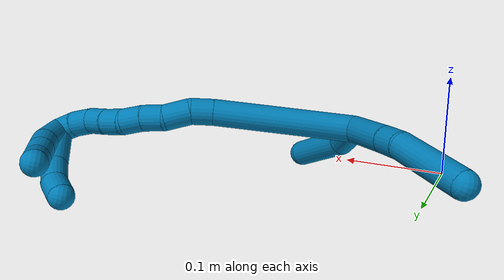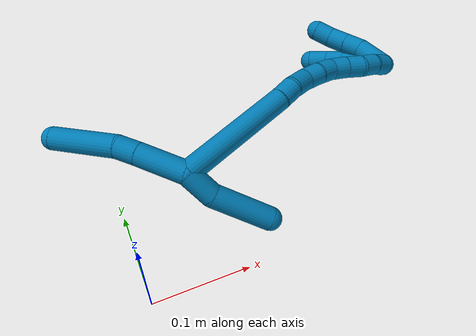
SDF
<sdf version="1.7">
 <world name="default">
  <model name="9">
   <static>0</static>
   <link name="9">
    <collision name="collision-cylinder-e_1_2_8">
     <pose>-0.022386 0.014639 -0.003023 -1.77442 -0.982054 1.16172</pose>
     <geometry><cylinder><radius>0.0125</radius><length>0.053836</length></cylinder></geometry>
     <surface>
      <friction><ode><mu>1.16</mu><mu2>1.16</mu2><slip1>0</slip1><slip2>0</slip2></ode></friction>
      <contact><ode><kp>1e+06</kp><kd>1</kd><max_vel>0</max_vel><min_depth>0.001</min_depth></ode></contact>
     </surface>
    </collision>
    <visual name="visual-cylinder-e_1_2_8">
     <pose>-0.022386 0.014639 -0.003023 -1.77442 -0.982054 1.16172</pose>
     <geometry><cylinder><radius>0.0125</radius><length>0.053836</length></cylinder></geometry>
     <material><ambient>0 0.490196 0.709804 1</ambient></material>
    </visual>
    <collision name="collision-cylinder-e_2_8_9">
     <pose>-0.054093 0.03572 -0.007588 -1.80573 -0.952959 1.15874</pose>
     <geometry><cylinder><radius>0.0125</radius><length>0.022871</length></cylinder></geometry>
     <surface>
      <friction><ode><mu>1.16</mu><mu2>1.16</mu2><slip1>0</slip1><slip2>0</slip2></ode></friction>
      <contact><ode><kp>1e+06</kp><kd>1</kd><max_vel>0</max_vel><min_depth>0.001</min_depth></ode></contact>
     </surface>
    </collision>
    <visual name="visual-cylinder-e_2_8_9">
     <pose>-0.054093 0.03572 -0.007588 -1.80573 -0.952959 1.15874</pose>
     <geometry><cylinder><radius>0.0125</radius><length>0.022871</length></cylinder></geometry>
     <material><ambient>0 0.490196 0.709804 1</ambient></material>
    </visual>
    <collision name="collision-cylinder-e_3_9_6">
     <pose>-0.088598 0.066704 -0.01945 -1.96889 -0.757619 1.07965</pose>
     <geometry><cylinder><radius>0.0125</radius><length>0.073293</length></cylinder></geometry>
     <surface>
      <friction><ode><mu>1.16</mu><mu2>1.16</mu2><slip1>0</slip1><slip2>0</slip2></ode></friction>
      <contact><ode><kp>1e+06</kp><kd>1</kd><max_vel>0</max_vel><min_depth>0.001</min_depth></ode></contact>
     </surface>
    </collision>
    <visual name="visual-cylinder-e_3_9_6">
     <pose>-0.088598 0.066704 -0.01945 -1.96889 -0.757619 1.07965</pose>
     <geometry><cylinder><radius>0.0125</radius><length>0.073293</length></cylinder></geometry>
     <material><ambient>0 0.490196 0.709804 1</ambient></material>
    </visual>
    <collision name="collision-cylinder-e_1_2_10">
     <pose>0.016893 -0.00116 -0.002084 2.63372 1.43057 2.56098</pose>
     <geometry><cylinder><radius>0.0125</radius><length>0.034121</length></cylinder></geometry>
     <surface>
      <friction><ode><mu>1.16</mu><mu2>1.16</mu2><slip1>0</slip1><slip2>0</slip2></ode></friction>
      <contact><ode><kp>1e+06</kp><kd>1</kd><max_vel>0</max_vel><min_depth>0.001</min_depth></ode></contact>
     </surface>
    </collision>
    <visual name="visual-cylinder-e_1_2_10">
     <pose>0.016893 -0.00116 -0.002084 2.63372 1.43057 2.56098</pose>
     <geometry><cylinder><radius>0.0125</radius><length>0.034121</length></cylinder></geometry>
     <material><ambient>0 0.490196 0.709804 1</ambient></material>
    </visual>
    <collision name="collision-cylinder-e_2_10_5">
     <pose>0.06557 -0.008276 0.002105 0.759592 1.30509 0.592191</pose>
     <geometry><cylinder><radius>0.0125</radius><length>0.065879</length></cylinder></geometry>
     <surface>
      <friction><ode><mu>1.16</mu><mu2>1.16</mu2><slip1>0</slip1><slip2>0</slip2></ode></friction>
      <contact><ode><kp>1e+06</kp><kd>1</kd><max_vel>0</max_vel><min_depth>0.001</min_depth></ode></contact>
     </surface>
    </collision>
    <visual name="visual-cylinder-e_2_10_5">
     <pose>0.06557 -0.008276 0.002105 0.759592 1.30509 0.592191</pose>
     <geometry><cylinder><radius>0.0125</radius><length>0.065879</length></cylinder></geometry>
     <material><ambient>0 0.490196 0.709804 1</ambient></material>
    </visual>
    <collision name="collision-cylinder-e_1_2_11">
     <pose>0.021772 -0.004188 0.061896 0.067557 0.337524 0.011515</pose>
     <geometry><cylinder><radius>0.0125</radius><length>0.131494</length></cylinder></geometry>
     <surface>
      <friction><ode><mu>1.16</mu><mu2>1.16</mu2><slip1>0</slip1><slip2>0</slip2></ode></friction>
      <contact><ode><kp>1e+06</kp><kd>1</kd><max_vel>0</max_vel><min_depth>0.001</min_depth></ode></contact>
     </surface>
    </collision>
    <visual name="visual-cylinder-e_1_2_11">
     <pose>0.021772 -0.004188 0.061896 0.067557 0.337524 0.011515</pose>
     <geometry><cylinder><radius>0.0125</radius><length>0.131494</length></cylinder></geometry>
     <material><ambient>0 0.490196 0.709804 1</ambient></material>
    </visual>
    <collision name="collision-cylinder-e_2_11_12">
     <pose>0.046659 -0.00792 0.133938 -0.044856 0.297538 -0.006724</pose>
     <geometry><cylinder><radius>0.0125</radius><length>0.021247</length></cylinder></geometry>
     <surface>
      <friction><ode><mu>1.16</mu><mu2>1.16</mu2><slip1>0</slip1><slip2>0</slip2></ode></friction>
      <contact><ode><kp>1e+06</kp><kd>1</kd><max_vel>0</max_vel><min_depth>0.001</min_depth></ode></contact>
     </surface>
    </collision>
    <visual name="visual-cylinder-e_2_11_12">
     <pose>0.046659 -0.00792 0.133938 -0.044856 0.297538 -0.006724</pose>
     <geometry><cylinder><radius>0.0125</radius><length>0.021247</length></cylinder></geometry>
     <material><ambient>0 0.490196 0.709804 1</ambient></material>
    </visual>
    <collision name="collision-cylinder-e_3_12_13">
     <pose>0.055579 -0.004131 0.155005 -0.296326 0.470386 -0.071502</pose>
     <geometry><cylinder><radius>0.0125</radius><length>0.025619</length></cylinder></geometry>
     <surface>
      <friction><ode><mu>1.16</mu><mu2>1.16</mu2><slip1>0</slip1><slip2>0</slip2></ode></friction>
      <contact><ode><kp>1e+06</kp><kd>1</kd><max_vel>0</max_vel><min_depth>0.001</min_depth></ode></contact>
     </surface>
    </collision>
    <visual name="visual-cylinder-e_3_12_13">
     <pose>0.055579 -0.004131 0.155005 -0.296326 0.470386 -0.071502</pose>
     <geometry><cylinder><radius>0.0125</radius><length>0.025619</length></cylinder></geometry>
     <material><ambient>0 0.490196 0.709804 1</ambient></material>
    </visual>
    <collision name="collision-cylinder-e_4_13_14">
     <pose>0.066936 -0.001118 0.174842 0.036097 0.556579 0.010314</pose>
     <geometry><cylinder><radius>0.0125</radius><length>0.021017</length></cylinder></geometry>
     <surface>
      <friction><ode><mu>1.16</mu><mu2>1.16</mu2><slip1>0</slip1><slip2>0</slip2></ode></friction>
      <contact><ode><kp>1e+06</kp><kd>1</kd><max_vel>0</max_vel><min_depth>0.001</min_depth></ode></contact>
     </surface>
    </collision>
    <visual name="visual-cylinder-e_4_13_14">
     <pose>0.066936 -0.001118 0.174842 0.036097 0.556579 0.010314</pose>
     <geometry><cylinder><radius>0.0125</radius><length>0.021017</length></cylinder></geometry>
     <material><ambient>0 0.490196 0.709804 1</ambient></material>
    </visual>
    <collision name="collision-cylinder-e_5_14_15">
     <pose>0.078549 -0.000266 0.191999 -0.141529 0.62942 -0.046141</pose>
     <geometry><cylinder><radius>0.0125</radius><length>0.020594</length></cylinder></geometry>
     <surface>
      <friction><ode><mu>1.16</mu><mu2>1.16</mu2><slip1>0</slip1><slip2>0</slip2></ode></friction>
      <contact><ode><kp>1e+06</kp><kd>1</kd><max_vel>0</max_vel><min_depth>0.001</min_depth></ode></contact>
     </surface>
    </collision>
    <visual name="visual-cylinder-e_5_14_15">
     <pose>0.078549 -0.000266 0.191999 -0.141529 0.62942 -0.046141</pose>
     <geometry><cylinder><radius>0.0125</radius><length>0.020594</length></cylinder></geometry>
     <material><ambient>0 0.490196 0.709804 1</ambient></material>
    </visual>
    <collision name="collision-cylinder-e_6_15_16">
     <pose>0.091688 -0.000823 0.207091 0.247518 0.78621 0.103079</pose>
     <geometry><cylinder><radius>0.0125</radius><length>0.020002</length></cylinder></geometry>
     <surface>
      <friction><ode><mu>1.16</mu><mu2>1.16</mu2><slip1>0</slip1><slip2>0</slip2></ode></friction>
      <contact><ode><kp>1e+06</kp><kd>1</kd><max_vel>0</max_vel><min_depth>0.001</min_depth></ode></contact>
     </surface>
    </collision>
    <visual name="visual-cylinder-e_6_15_16">
     <pose>0.091688 -0.000823 0.207091 0.247518 0.78621 0.103079</pose>
     <geometry><cylinder><radius>0.0125</radius><length>0.020002</length></cylinder></geometry>
     <material><ambient>0 0.490196 0.709804 1</ambient></material>
    </visual>
    <collision name="collision-cylinder-e_7_16_17">
     <pose>0.106229 -0.00515 0.220078 0.400244 0.842015 0.181157</pose>
     <geometry><cylinder><radius>0.0125</radius><length>0.02001</length></cylinder></geometry>
     <surface>
      <friction><ode><mu>1.16</mu><mu2>1.16</mu2><slip1>0</slip1><slip2>0</slip2></ode></friction>
      <contact><ode><kp>1e+06</kp><kd>1</kd><max_vel>0</max_vel><min_depth>0.001</min_depth></ode></contact>
     </surface>
    </collision>
    <visual name="visual-cylinder-e_7_16_17">
     <pose>0.106229 -0.00515 0.220078 0.400244 0.842015 0.181157</pose>
     <geometry><cylinder><radius>0.0125</radius><length>0.02001</length></cylinder></geometry>
     <material><ambient>0 0.490196 0.709804 1</ambient></material>
    </visual>
    <collision name="collision-cylinder-e_8_17_18">
     <pose>0.120628 -0.007486 0.233422 -0.03609 0.765761 -0.014537</pose>
     <geometry><cylinder><radius>0.0125</radius><length>0.020013</length></cylinder></geometry>
     <surface>
      <friction><ode><mu>1.16</mu><mu2>1.16</mu2><slip1>0</slip1><slip2>0</slip2></ode></friction>
      <contact><ode><kp>1e+06</kp><kd>1</kd><max_vel>0</max_vel><min_depth>0.001</min_depth></ode></contact>
     </surface>
    </collision>
    <visual name="visual-cylinder-e_8_17_18">
     <pose>0.120628 -0.007486 0.233422 -0.03609 0.765761 -0.014537</pose>
     <geometry><cylinder><radius>0.0125</radius><length>0.020013</length></cylinder></geometry>
     <material><ambient>0 0.490196 0.709804 1</ambient></material>
    </visual>
    <collision name="collision-cylinder-e_9_18_1">
     <pose>0.13509 -0.005465 0.246979 -0.270646 0.851866 -0.123393</pose>
     <geometry><cylinder><radius>0.0125</radius><length>0.020004</length></cylinder></geometry>
     <surface>
      <friction><ode><mu>1.16</mu><mu2>1.16</mu2><slip1>0</slip1><slip2>0</slip2></ode></friction>
      <contact><ode><kp>1e+06</kp><kd>1</kd><max_vel>0</max_vel><min_depth>0.001</min_depth></ode></contact>
     </surface>
    </collision>
    <visual name="visual-cylinder-e_9_18_1">
     <pose>0.13509 -0.005465 0.246979 -0.270646 0.851866 -0.123393</pose>
     <geometry><cylinder><radius>0.0125</radius><length>0.020004</length></cylinder></geometry>
     <material><ambient>0 0.490196 0.709804 1</ambient></material>
    </visual>
    <collision name="collision-cylinder-e_1_1_19">
     <pose>0.130942 0.020064 0.253208 -1.57576 -0.456591 0.458784</pose>
     <geometry><cylinder><radius>0.0125</radius><length>0.052962</length></cylinder></geometry>
     <surface>
      <friction><ode><mu>1.16</mu><mu2>1.16</mu2><slip1>0</slip1><slip2>0</slip2></ode></friction>
      <contact><ode><kp>1e+06</kp><kd>1</kd><max_vel>0</max_vel><min_depth>0.001</min_depth></ode></contact>
     </surface>
    </collision>
    <visual name="visual-cylinder-e_1_1_19">
     <pose>0.130942 0.020064 0.253208 -1.57576 -0.456591 0.458784</pose>
     <geometry><cylinder><radius>0.0125</radius><length>0.052962</length></cylinder></geometry>
     <material><ambient>0 0.490196 0.709804 1</ambient></material>
    </visual>
    <collision name="collision-cylinder-e_2_19_20">
     <pose>0.113752 0.054403 0.251932 -1.67991 -0.478456 0.531294</pose>
     <geometry><cylinder><radius>0.0125</radius><length>0.023958</length></cylinder></geometry>
     <surface>
      <friction><ode><mu>1.16</mu><mu2>1.16</mu2><slip1>0</slip1><slip2>0</slip2></ode></friction>
      <contact><ode><kp>1e+06</kp><kd>1</kd><max_vel>0</max_vel><min_depth>0.001</min_depth></ode></contact>
     </surface>
    </collision>
    <visual name="visual-cylinder-e_2_19_20">
     <pose>0.113752 0.054403 0.251932 -1.67991 -0.478456 0.531294</pose>
     <geometry><cylinder><radius>0.0125</radius><length>0.023958</length></cylinder></geometry>
     <material><ambient>0 0.490196 0.709804 1</ambient></material>
    </visual>
    <collision name="collision-cylinder-e_3_20_4">
     <pose>0.101138 0.073323 0.24716 -1.97928 -0.662526 0.964755</pose>
     <geometry><cylinder><radius>0.0125</radius><length>0.02308</length></cylinder></geometry>
     <surface>
      <friction><ode><mu>1.16</mu><mu2>1.16</mu2><slip1>0</slip1><slip2>0</slip2></ode></friction>
      <contact><ode><kp>1e+06</kp><kd>1</kd><max_vel>0</max_vel><min_depth>0.001</min_depth></ode></contact>
     </surface>
    </collision>
    <visual name="visual-cylinder-e_3_20_4">
     <pose>0.101138 0.073323 0.24716 -1.97928 -0.662526 0.964755</pose>
     <geometry><cylinder><radius>0.0125</radius><length>0.02308</length></cylinder></geometry>
     <material><ambient>0 0.490196 0.709804 1</ambient></material>
    </visual>
    <collision name="collision-cylinder-e_1_1_21">
     <pose>0.130929 0.008797 0.259774 -1.09456 -0.693334 0.433363</pose>
     <geometry><cylinder><radius>0.0125</radius><length>0.036576</length></cylinder></geometry>
     <surface>
      <friction><ode><mu>1.16</mu><mu2>1.16</mu2><slip1>0</slip1><slip2>0</slip2></ode></friction>
      <contact><ode><kp>1e+06</kp><kd>1</kd><max_vel>0</max_vel><min_depth>0.001</min_depth></ode></contact>
     </surface>
    </collision>
    <visual name="visual-cylinder-e_1_1_21">
     <pose>0.130929 0.008797 0.259774 -1.09456 -0.693334 0.433363</pose>
     <geometry><cylinder><radius>0.0125</radius><length>0.036576</length></cylinder></geometry>
     <material><ambient>0 0.490196 0.709804 1</ambient></material>
    </visual>
    <collision name="collision-cylinder-e_2_21_22">
     <pose>0.112031 0.02877 0.267395 -1.41513 -0.761471 0.659683</pose>
     <geometry><cylinder><radius>0.0125</radius><length>0.020901</length></cylinder></geometry>
     <surface>
      <friction><ode><mu>1.16</mu><mu2>1.16</mu2><slip1>0</slip1><slip2>0</slip2></ode></friction>
      <contact><ode><kp>1e+06</kp><kd>1</kd><max_vel>0</max_vel><min_depth>0.001</min_depth></ode></contact>
     </surface>
    </collision>
    <visual name="visual-cylinder-e_2_21_22">
     <pose>0.112031 0.02877 0.267395 -1.41513 -0.761471 0.659683</pose>
     <geometry><cylinder><radius>0.0125</radius><length>0.020901</length></cylinder></geometry>
     <material><ambient>0 0.490196 0.709804 1</ambient></material>
    </visual>
    <collision name="collision-cylinder-e_3_22_23">
     <pose>0.097252 0.044028 0.269718 -1.42418 -0.765845 0.669231</pose>
     <geometry><cylinder><radius>0.0125</radius><length>0.021835</length></cylinder></geometry>
     <surface>
      <friction><ode><mu>1.16</mu><mu2>1.16</mu2><slip1>0</slip1><slip2>0</slip2></ode></friction>
      <contact><ode><kp>1e+06</kp><kd>1</kd><max_vel>0</max_vel><min_depth>0.001</min_depth></ode></contact>
     </surface>
    </collision>
    <visual name="visual-cylinder-e_3_22_23">
     <pose>0.097252 0.044028 0.269718 -1.42418 -0.765845 0.669231</pose>
     <geometry><cylinder><radius>0.0125</radius><length>0.021835</length></cylinder></geometry>
     <material><ambient>0 0.490196 0.709804 1</ambient></material>
    </visual>
    <collision name="collision-cylinder-e_4_23_3">
     <pose>0.08127 0.057774 0.271679 -1.43553 -0.950136 0.844207</pose>
     <geometry><cylinder><radius>0.0125</radius><length>0.020688</length></cylinder></geometry>
     <surface>
      <friction><ode><mu>1.16</mu><mu2>1.16</mu2><slip1>0</slip1><slip2>0</slip2></ode></friction>
      <contact><ode><kp>1e+06</kp><kd>1</kd><max_vel>0</max_vel><min_depth>0.001</min_depth></ode></contact>
     </surface>
    </collision>
    <visual name="visual-cylinder-e_4_23_3">
     <pose>0.08127 0.057774 0.271679 -1.43553 -0.950136 0.844207</pose>
     <geometry><cylinder><radius>0.0125</radius><length>0.020688</length></cylinder></geometry>
     <material><ambient>0 0.490196 0.709804 1</ambient></material>
    </visual>
    <collision name="collision-sphere-3">
     <pose>0.072855 0.063734 0.27249 0 -0 0</pose>
     <geometry><sphere><radius>0.0125</radius></sphere></geometry>
     <surface>
      <friction><ode><mu>1.16</mu><mu2>1.16</mu2><slip1>0</slip1><slip2>0</slip2></ode></friction>
      <contact><ode><kp>1e+06</kp><kd>1</kd><max_vel>0</max_vel><min_depth>0.001</min_depth></ode></contact>
     </surface>
    </collision>
    <visual name="visual-sphere-3">
     <pose>0.072855 0.063734 0.27249 0 -0 0</pose>
     <geometry><sphere><radius>0.0125</radius></sphere></geometry>
     <material><ambient>0 0.490196 0.709804 1</ambient></material>
    </visual>
    <collision name="collision-sphere-23">
     <pose>0.089685 0.051813 0.270867 0 -0 0</pose>
     <geometry><sphere><radius>0.0125</radius></sphere></geometry>
     <surface>
      <friction><ode><mu>1.16</mu><mu2>1.16</mu2><slip1>0</slip1><slip2>0</slip2></ode></friction>
      <contact><ode><kp>1e+06</kp><kd>1</kd><max_vel>0</max_vel><min_depth>0.001</min_depth></ode></contact>
     </surface>
    </collision>
    <visual name="visual-sphere-23">
     <pose>0.089685 0.051813 0.270867 0 -0 0</pose>
     <geometry><sphere><radius>0.0125</radius></sphere></geometry>
     <material><ambient>0 0.490196 0.709804 1</ambient></material>
    </visual>
    <collision name="collision-sphere-22">
     <pose>0.10482 0.036243 0.268568 0 -0 0</pose>
     <geometry><sphere><radius>0.0125</radius></sphere></geometry>
     <surface>
      <friction><ode><mu>1.16</mu><mu2>1.16</mu2><slip1>0</slip1><slip2>0</slip2></ode></friction>
      <contact><ode><kp>1e+06</kp><kd>1</kd><max_vel>0</max_vel><min_depth>0.001</min_depth></ode></contact>
     </surface>
    </collision>
    <visual name="visual-sphere-22">
     <pose>0.10482 0.036243 0.268568 0 -0 0</pose>
     <geometry><sphere><radius>0.0125</radius></sphere></geometry>
     <material><ambient>0 0.490196 0.709804 1</ambient></material>
    </visual>
    <collision name="collision-sphere-21">
     <pose>0.119241 0.021297 0.266223 0 -0 0</pose>
     <geometry><sphere><radius>0.0125</radius></sphere></geometry>
     <surface>
      <friction><ode><mu>1.16</mu><mu2>1.16</mu2><slip1>0</slip1><slip2>0</slip2></ode></friction>
      <contact><ode><kp>1e+06</kp><kd>1</kd><max_vel>0</max_vel><min_depth>0.001</min_depth></ode></contact>
     </surface>
    </collision>
    <visual name="visual-sphere-21">
     <pose>0.119241 0.021297 0.266223 0 -0 0</pose>
     <geometry><sphere><radius>0.0125</radius></sphere></geometry>
     <material><ambient>0 0.490196 0.709804 1</ambient></material>
    </visual>
    <collision name="collision-sphere-4">
     <pose>0.094039 0.081673 0.243546 0 -0 0</pose>
     <geometry><sphere><radius>0.0125</radius></sphere></geometry>
     <surface>
      <friction><ode><mu>1.16</mu><mu2>1.16</mu2><slip1>0</slip1><slip2>0</slip2></ode></friction>
      <contact><ode><kp>1e+06</kp><kd>1</kd><max_vel>0</max_vel><min_depth>0.001</min_depth></ode></contact>
     </surface>
    </collision>
    <visual name="visual-sphere-4">
     <pose>0.094039 0.081673 0.243546 0 -0 0</pose>
     <geometry><sphere><radius>0.0125</radius></sphere></geometry>
     <material><ambient>0 0.490196 0.709804 1</ambient></material>
    </visual>
    <collision name="collision-sphere-20">
     <pose>0.108236 0.064973 0.250774 0 -0 0</pose>
     <geometry><sphere><radius>0.0125</radius></sphere></geometry>
     <surface>
      <friction><ode><mu>1.16</mu><mu2>1.16</mu2><slip1>0</slip1><slip2>0</slip2></ode></friction>
      <contact><ode><kp>1e+06</kp><kd>1</kd><max_vel>0</max_vel><min_depth>0.001</min_depth></ode></contact>
     </surface>
    </collision>
    <visual name="visual-sphere-20">
     <pose>0.108236 0.064973 0.250774 0 -0 0</pose>
     <geometry><sphere><radius>0.0125</radius></sphere></geometry>
     <material><ambient>0 0.490196 0.709804 1</ambient></material>
    </visual>
    <collision name="collision-sphere-5">
     <pose>0.097353 -0.014232 0.008377 0 -0 0</pose>
     <geometry><sphere><radius>0.0125</radius></sphere></geometry>
     <surface>
      <friction><ode><mu>1.16</mu><mu2>1.16</mu2><slip1>0</slip1><slip2>0</slip2></ode></friction>
      <contact><ode><kp>1e+06</kp><kd>1</kd><max_vel>0</max_vel><min_depth>0.001</min_depth></ode></contact>
     </surface>
    </collision>
    <visual name="visual-sphere-5">
     <pose>0.097353 -0.014232 0.008377 0 -0 0</pose>
     <geometry><sphere><radius>0.0125</radius></sphere></geometry>
     <material><ambient>0 0.490196 0.709804 1</ambient></material>
    </visual>
    <collision name="collision-sphere-10">
     <pose>0.033786 -0.002319 -0.004167 0 -0 0</pose>
     <geometry><sphere><radius>0.0125</radius></sphere></geometry>
     <surface>
      <friction><ode><mu>1.16</mu><mu2>1.16</mu2><slip1>0</slip1><slip2>0</slip2></ode></friction>
      <contact><ode><kp>1e+06</kp><kd>1</kd><max_vel>0</max_vel><min_depth>0.001</min_depth></ode></contact>
     </surface>
    </collision>
    <visual name="visual-sphere-10">
     <pose>0.033786 -0.002319 -0.004167 0 -0 0</pose>
     <geometry><sphere><radius>0.0125</radius></sphere></geometry>
     <material><ambient>0 0.490196 0.709804 1</ambient></material>
    </visual>
    <collision name="collision-sphere-6">
     <pose>-0.113782 0.091245 -0.029771 0 -0 0</pose>
     <geometry><sphere><radius>0.0125</radius></sphere></geometry>
     <surface>
      <friction><ode><mu>1.16</mu><mu2>1.16</mu2><slip1>0</slip1><slip2>0</slip2></ode></friction>
      <contact><ode><kp>1e+06</kp><kd>1</kd><max_vel>0</max_vel><min_depth>0.001</min_depth></ode></contact>
     </surface>
    </collision>
    <visual name="visual-sphere-6">
     <pose>-0.113782 0.091245 -0.029771 0 -0 0</pose>
     <geometry><sphere><radius>0.0125</radius></sphere></geometry>
     <material><ambient>0 0.490196 0.709804 1</ambient></material>
    </visual>
    <collision name="collision-sphere-9">
     <pose>-0.063415 0.042163 -0.00913 0 -0 0</pose>
     <geometry><sphere><radius>0.0125</radius></sphere></geometry>
     <surface>
      <friction><ode><mu>1.16</mu><mu2>1.16</mu2><slip1>0</slip1><slip2>0</slip2></ode></friction>
      <contact><ode><kp>1e+06</kp><kd>1</kd><max_vel>0</max_vel><min_depth>0.001</min_depth></ode></contact>
     </surface>
    </collision>
    <visual name="visual-sphere-9">
     <pose>-0.063415 0.042163 -0.00913 0 -0 0</pose>
     <geometry><sphere><radius>0.0125</radius></sphere></geometry>
     <material><ambient>0 0.490196 0.709804 1</ambient></material>
    </visual>
    <collision name="collision-sphere-2">
     <geometry><sphere><radius>0.0125</radius></sphere></geometry>
     <surface>
      <friction><ode><mu>1.16</mu><mu2>1.16</mu2><slip1>0</slip1><slip2>0</slip2></ode></friction>
      <contact><ode><kp>1e+06</kp><kd>1</kd><max_vel>0</max_vel><min_depth>0.001</min_depth></ode></contact>
     </surface>
    </collision>
    <visual name="visual-sphere-2">
     <geometry><sphere><radius>0.0125</radius></sphere></geometry>
     <material><ambient>0 0.490196 0.709804 1</ambient></material>
    </visual>
    <collision name="collision-sphere-19">
     <pose>0.119267 0.043832 0.25309 0 -0 0</pose>
     <geometry><sphere><radius>0.0125</radius></sphere></geometry>
     <surface>
      <friction><ode><mu>1.16</mu><mu2>1.16</mu2><slip1>0</slip1><slip2>0</slip2></ode></friction>
      <contact><ode><kp>1e+06</kp><kd>1</kd><max_vel>0</max_vel><min_depth>0.001</min_depth></ode></contact>
     </surface>
    </collision>
    <visual name="visual-sphere-19">
     <pose>0.119267 0.043832 0.25309 0 -0 0</pose>
     <geometry><sphere><radius>0.0125</radius></sphere></geometry>
     <material><ambient>0 0.490196 0.709804 1</ambient></material>
    </visual>
    <collision name="collision-sphere-8">
     <pose>-0.044772 0.029278 -0.006046 0 -0 0</pose>
     <geometry><sphere><radius>0.0125</radius></sphere></geometry>
     <surface>
      <friction><ode><mu>1.16</mu><mu2>1.16</mu2><slip1>0</slip1><slip2>0</slip2></ode></friction>
      <contact><ode><kp>1e+06</kp><kd>1</kd><max_vel>0</max_vel><min_depth>0.001</min_depth></ode></contact>
     </surface>
    </collision>
    <visual name="visual-sphere-8">
     <pose>-0.044772 0.029278 -0.006046 0 -0 0</pose>
     <geometry><sphere><radius>0.0125</radius></sphere></geometry>
     <material><ambient>0 0.490196 0.709804 1</ambient></material>
    </visual>
    <collision name="collision-sphere-11">
     <pose>0.043544 -0.008376 0.123791 0 -0 0</pose>
     <geometry><sphere><radius>0.0125</radius></sphere></geometry>
     <surface>
      <friction><ode><mu>1.16</mu><mu2>1.16</mu2><slip1>0</slip1><slip2>0</slip2></ode></friction>
      <contact><ode><kp>1e+06</kp><kd>1</kd><max_vel>0</max_vel><min_depth>0.001</min_depth></ode></contact>
     </surface>
    </collision>
    <visual name="visual-sphere-11">
     <pose>0.043544 -0.008376 0.123791 0 -0 0</pose>
     <geometry><sphere><radius>0.0125</radius></sphere></geometry>
     <material><ambient>0 0.490196 0.709804 1</ambient></material>
    </visual>
    <collision name="collision-sphere-12">
     <pose>0.049773 -0.007465 0.144084 0 -0 0</pose>
     <geometry><sphere><radius>0.0125</radius></sphere></geometry>
     <surface>
      <friction><ode><mu>1.16</mu><mu2>1.16</mu2><slip1>0</slip1><slip2>0</slip2></ode></friction>
      <contact><ode><kp>1e+06</kp><kd>1</kd><max_vel>0</max_vel><min_depth>0.001</min_depth></ode></contact>
     </surface>
    </collision>
    <visual name="visual-sphere-12">
     <pose>0.049773 -0.007465 0.144084 0 -0 0</pose>
     <geometry><sphere><radius>0.0125</radius></sphere></geometry>
     <material><ambient>0 0.490196 0.709804 1</ambient></material>
    </visual>
    <collision name="collision-sphere-13">
     <pose>0.061385 -0.000796 0.165926 0 -0 0</pose>
     <geometry><sphere><radius>0.0125</radius></sphere></geometry>
     <surface>
      <friction><ode><mu>1.16</mu><mu2>1.16</mu2><slip1>0</slip1><slip2>0</slip2></ode></friction>
      <contact><ode><kp>1e+06</kp><kd>1</kd><max_vel>0</max_vel><min_depth>0.001</min_depth></ode></contact>
     </surface>
    </collision>
    <visual name="visual-sphere-13">
     <pose>0.061385 -0.000796 0.165926 0 -0 0</pose>
     <geometry><sphere><radius>0.0125</radius></sphere></geometry>
     <material><ambient>0 0.490196 0.709804 1</ambient></material>
    </visual>
    <collision name="collision-sphere-14">
     <pose>0.072487 -0.00144 0.183759 0 -0 0</pose>
     <geometry><sphere><radius>0.0125</radius></sphere></geometry>
     <surface>
      <friction><ode><mu>1.16</mu><mu2>1.16</mu2><slip1>0</slip1><slip2>0</slip2></ode></friction>
      <contact><ode><kp>1e+06</kp><kd>1</kd><max_vel>0</max_vel><min_depth>0.001</min_depth></ode></contact>
     </surface>
    </collision>
    <visual name="visual-sphere-14">
     <pose>0.072487 -0.00144 0.183759 0 -0 0</pose>
     <geometry><sphere><radius>0.0125</radius></sphere></geometry>
     <material><ambient>0 0.490196 0.709804 1</ambient></material>
    </visual>
    <collision name="collision-sphere-15">
     <pose>0.084611 0.000908 0.20024 0 -0 0</pose>
     <geometry><sphere><radius>0.0125</radius></sphere></geometry>
     <surface>
      <friction><ode><mu>1.16</mu><mu2>1.16</mu2><slip1>0</slip1><slip2>0</slip2></ode></friction>
      <contact><ode><kp>1e+06</kp><kd>1</kd><max_vel>0</max_vel><min_depth>0.001</min_depth></ode></contact>
     </surface>
    </collision>
    <visual name="visual-sphere-15">
     <pose>0.084611 0.000908 0.20024 0 -0 0</pose>
     <geometry><sphere><radius>0.0125</radius></sphere></geometry>
     <material><ambient>0 0.490196 0.709804 1</ambient></material>
    </visual>
    <collision name="collision-sphere-16">
     <pose>0.098766 -0.002554 0.213941 0 -0 0</pose>
     <geometry><sphere><radius>0.0125</radius></sphere></geometry>
     <surface>
      <friction><ode><mu>1.16</mu><mu2>1.16</mu2><slip1>0</slip1><slip2>0</slip2></ode></friction>
      <contact><ode><kp>1e+06</kp><kd>1</kd><max_vel>0</max_vel><min_depth>0.001</min_depth></ode></contact>
     </surface>
    </collision>
    <visual name="visual-sphere-16">
     <pose>0.098766 -0.002554 0.213941 0 -0 0</pose>
     <geometry><sphere><radius>0.0125</radius></sphere></geometry>
     <material><ambient>0 0.490196 0.709804 1</ambient></material>
    </visual>
    <collision name="collision-sphere-17">
     <pose>0.113693 -0.007747 0.226214 0 -0 0</pose>
     <geometry><sphere><radius>0.0125</radius></sphere></geometry>
     <surface>
      <friction><ode><mu>1.16</mu><mu2>1.16</mu2><slip1>0</slip1><slip2>0</slip2></ode></friction>
      <contact><ode><kp>1e+06</kp><kd>1</kd><max_vel>0</max_vel><min_depth>0.001</min_depth></ode></contact>
     </surface>
    </collision>
    <visual name="visual-sphere-17">
     <pose>0.113693 -0.007747 0.226214 0 -0 0</pose>
     <geometry><sphere><radius>0.0125</radius></sphere></geometry>
     <material><ambient>0 0.490196 0.709804 1</ambient></material>
    </visual>
    <collision name="collision-sphere-18">
     <pose>0.127564 -0.007226 0.240631 0 -0 0</pose>
     <geometry><sphere><radius>0.0125</radius></sphere></geometry>
     <surface>
      <friction><ode><mu>1.16</mu><mu2>1.16</mu2><slip1>0</slip1><slip2>0</slip2></ode></friction>
      <contact><ode><kp>1e+06</kp><kd>1</kd><max_vel>0</max_vel><min_depth>0.001</min_depth></ode></contact>
     </surface>
    </collision>
    <visual name="visual-sphere-18">
     <pose>0.127564 -0.007226 0.240631 0 -0 0</pose>
     <geometry><sphere><radius>0.0125</radius></sphere></geometry>
     <material><ambient>0 0.490196 0.709804 1</ambient></material>
    </visual>
    <collision name="collision-sphere-1">
     <pose>0.142617 -0.003704 0.253326 0 -0 0</pose>
     <geometry><sphere><radius>0.0125</radius></sphere></geometry>
     <surface>
      <friction><ode><mu>1.16</mu><mu2>1.16</mu2><slip1>0</slip1><slip2>0</slip2></ode></friction>
      <contact><ode><kp>1e+06</kp><kd>1</kd><max_vel>0</max_vel><min_depth>0.001</min_depth></ode></contact>
     </surface>
    </collision>
    <visual name="visual-sphere-1">
     <pose>0.142617 -0.003704 0.253326 0 -0 0</pose>
     <geometry><sphere><radius>0.0125</radius></sphere></geometry>
     <material><ambient>0 0.490196 0.709804 1</ambient></material>
    </visual>
    <inertial>
     <pose>0.048358 0.015753 0.121065 0 -0 0</pose>
     <mass>0.75</mass>
     <inertia>
      <ixx>0.000286</ixx>
      <ixy>0</ixy>
      <ixz>0</ixz>
      <iyy>0.000339</iyy>
      <iyz>0</iyz>
      <izz>-6.8e-05</izz>
     </inertia>
    </inertial>
   </link>
   <pose>0.069102 0.086879 0.062255 -1.20098 0.686921 -0.670575</pose>
  </model>
 </world>
</sdf>
